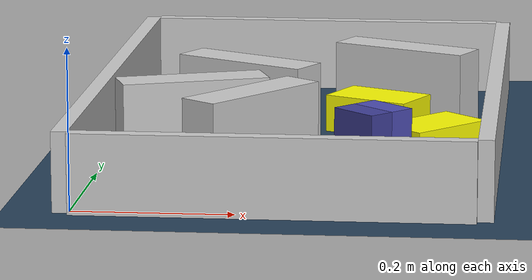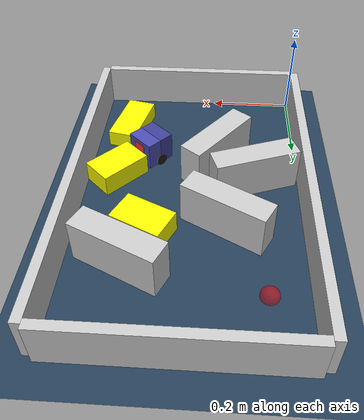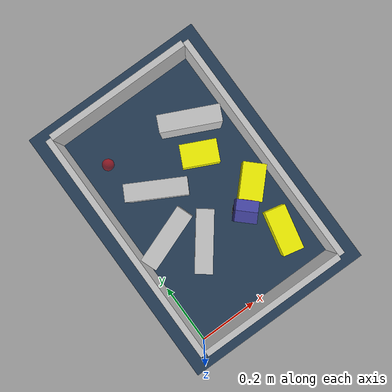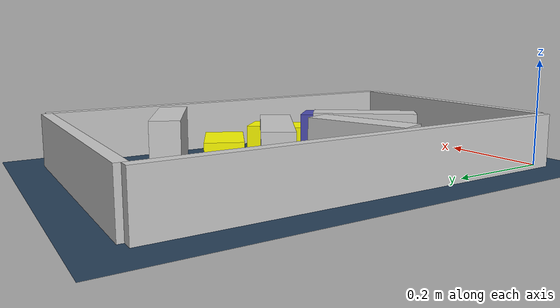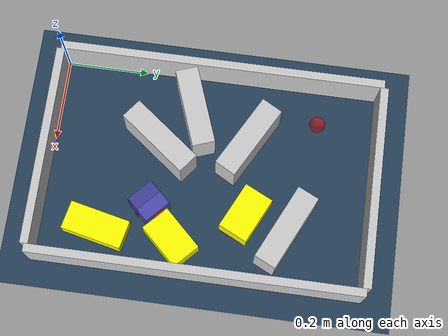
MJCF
<?xml version='1.0' encoding='utf-8'?>
<mujoco model="real_buildable">
  <compiler angle="degree" />
  <option timestep="0.002" integrator="implicitfast" iterations="100" cone="elliptic" />
  <default>
    <geom density="1" />
  </default>
  <asset>
    <texture builtin="gradient" height="3072" rgb1="0.3 0.5 0.7" rgb2="0 0 0" type="skybox" width="512" />
    <texture builtin="checker" height="300" mark="edge" markrgb="0.8 0.8 0.8" name="groundplane" rgb1="0.2 0.3 0.4" rgb2="0.1 0.2 0.3" type="2d" width="300" />
    <material name="groundplane" reflectance="0.2" texrepeat="5 5" texture="groundplane" texuniform="true" />
  </asset>
  <worldbody>
    <light dir="0 0 -1" directional="true" pos="0 0 1.5" />
    <geom name="floor" type="plane" condim="4" friction="0.5 0.005 0.001" material="groundplane" size="0 0 0.05" />
    <body name="walls">
      <geom name="wall_boundary_left" type="box" condim="4" friction="1.0 0.005 0.0001" rgba="0.8 0.8 0.8 1" pos="-0.010000 0.387500 0.050000" euler="0 0 0.000000" size="0.010000 0.397500 0.050000" />
      <geom name="wall_boundary_right" type="box" condim="4" friction="1.0 0.005 0.0001" rgba="0.8 0.8 0.8 1" pos="0.500000 0.387500 0.050000" euler="0 0 0.000000" size="0.010000 0.397500 0.050000" />
      <geom name="wall_boundary_bottom" type="box" condim="4" friction="1.0 0.005 0.0001" rgba="0.8 0.8 0.8 1" pos="0.245000 -0.010000 0.050000" euler="0 0 0.000000" size="0.245000 0.010000 0.050000" />
      <geom name="wall_boundary_top" type="box" condim="4" friction="1.0 0.005 0.0001" rgba="0.8 0.8 0.8 1" pos="0.245000 0.785000 0.050000" euler="0 0 0.000000" size="0.245000 0.010000 0.050000" />
      <geom name="wall_inner_1" type="box" condim="4" friction="1.0 0.005 0.0001" rgba="0.8 0.8 0.8 1" pos="0.190828 0.262556 0.050000" euler="0 0 232.520843" size="0.097500 0.027500 0.050000" />
      <geom name="wall_inner_2" type="box" condim="4" friction="1.0 0.005 0.0001" rgba="0.8 0.8 0.8 1" pos="0.105082 0.336265 0.050000" euler="0 0 200.095559" size="0.097500 0.027500 0.050000" />
      <geom name="wall_inner_3" type="box" condim="4" friction="1.0 0.005 0.0001" rgba="0.8 0.8 0.8 1" pos="0.165000 0.474000 0.050000" euler="0 0 151.300000" size="0.097500 0.027500 0.050000" />
      <geom name="wall_inner_4" type="box" condim="4" friction="1.0 0.005 0.0001" rgba="0.8 0.8 0.8 1" pos="0.372000 0.588000 0.050000" euler="0 0 154.700000" size="0.097500 0.027500 0.050000" />
    </body>
    <body name="car" pos="0.3477860364547839 0.25860865832113161 0.01" quat="0.91748037505089297 0 0 0.39778104705537803">
      <freejoint name="car_freejoint" />
      <inertial pos="0 0 0.0375" mass="0.35" diaginertia="0.000266 0.000266 0.000286" />
      <geom name="front_chassis_collision" type="box" pos="0.0175 0 0.0375" size="0.0175 0.035 0.0325" rgba="0.3 0.3 0.7 1" />
      <geom name="rear_chassis_collision" type="box" pos="-0.0175 0 0.0375" size="0.0175 0.035 0.0325" rgba="0.25 0.25 0.6 1" />
      <geom name="front_marker" type="box" pos="0.034 0 0.0505" size="0.002 0.015 0.01" rgba="1 0.2 0.2 1" contype="0" conaffinity="0" />
      <body name="rear_support_body" pos="-0.03 0 0.0025">
        <joint name="rear_caster_joint" type="ball" damping="0.0001" />
        <inertial pos="0 0 0" mass="0.025" diaginertia="0.000001 0.000001 0.000001" />
        <geom name="rear_support" type="sphere" pos="0 0 0" size="0.0025" friction="0 0 0" rgba="0.7 0.1 0.1 1" />
      </body>
      <body name="front_support_body" pos="0.03 0 0.0025">
        <joint name="front_caster_joint" type="ball" damping="0.0001" />
        <inertial pos="0 0 0" mass="0.025" diaginertia="0.000001 0.000001 0.000001" />
        <geom name="front_support" type="sphere" pos="0 0 0" size="0.0025" friction="0 0 0" rgba="0.1 0.7 0.1 1" />
      </body>
      <body name="left_wheel" pos="0 0.0375 0.015">
        <inertial pos="0 0 0" mass="0.05" diaginertia="0.000003 0.000006 0.000003" />
        <joint name="left_wheel_joint" type="hinge" axis="0 1 0" damping="0.01" armature="0.0001" />
        <geom name="left_wheel_collision" type="cylinder" size="0.015 0.0005" euler="90 0 0" rgba="0.1 0.1 0.1 1" />
      </body>
      <body name="right_wheel" pos="0 -0.0375 0.015">
        <inertial pos="0 0 0" mass="0.05" diaginertia="0.000003 0.000006 0.000003" />
        <joint name="right_wheel_joint" type="hinge" axis="0 1 0" damping="0.01" armature="0.0001" />
        <geom name="right_wheel_collision" type="cylinder" size="0.015 0.0005" euler="90 0 0" rgba="0.1 0.1 0.1 1" />
      </body>
    </body>
    <body name="obstacle_0_movable">
      <geom name="obstacle_0_movable" condim="4" pos="0.42155829314133442 0.32018598318020108 0.025000000000000001" friction="1 0.005 0.0001" rgba="1 1 0 1" size="0.037500 0.060000 0.025000" type="box" mass="0.1" quat="0.37054994840805844 0 0 0.92881254068557084" />
      <joint type="free" />
    </body>
    <body name="obstacle_1_movable">
      <geom name="obstacle_1_movable" condim="4" pos="0.33900000000000002 0.48999999999999982 0.025000000000000001" friction="1 0.005 0.0001" rgba="1 1 0 1" size="0.037500 0.060000 0.025000" type="box" mass="0.1" quat="0.84619316612756401 0 0 0.53287627607072996" />
      <joint type="free" />
    </body>
    <body name="obstacle_2_movable">
      <geom name="obstacle_2_movable" condim="4" pos="0.41286099999999998 0.13764199999999999 0.02" friction="1 0.005 0.0001" rgba="1 1 0 1" size="0.035000 0.075000 0.020000" type="box" mass="0.1" quat="0.10775769357404164 0 0 0.99417718716313486" />
      <joint type="free" />
    </body>
    <site name="goal" type="sphere" pos="0.080000 0.640000 0.0" size="0.02" rgba="1 0 0 0.5" />
  </worldbody>
  <actuator>
    <velocity name="left_wheel_drive" joint="left_wheel_joint" ctrlrange="-25 25" kv="0.75" forcerange="-0.5 0.5" />
    <velocity name="right_wheel_drive" joint="right_wheel_joint" ctrlrange="-25 25" kv="0.75" forcerange="-0.5 0.5" />
  </actuator>
</mujoco>
